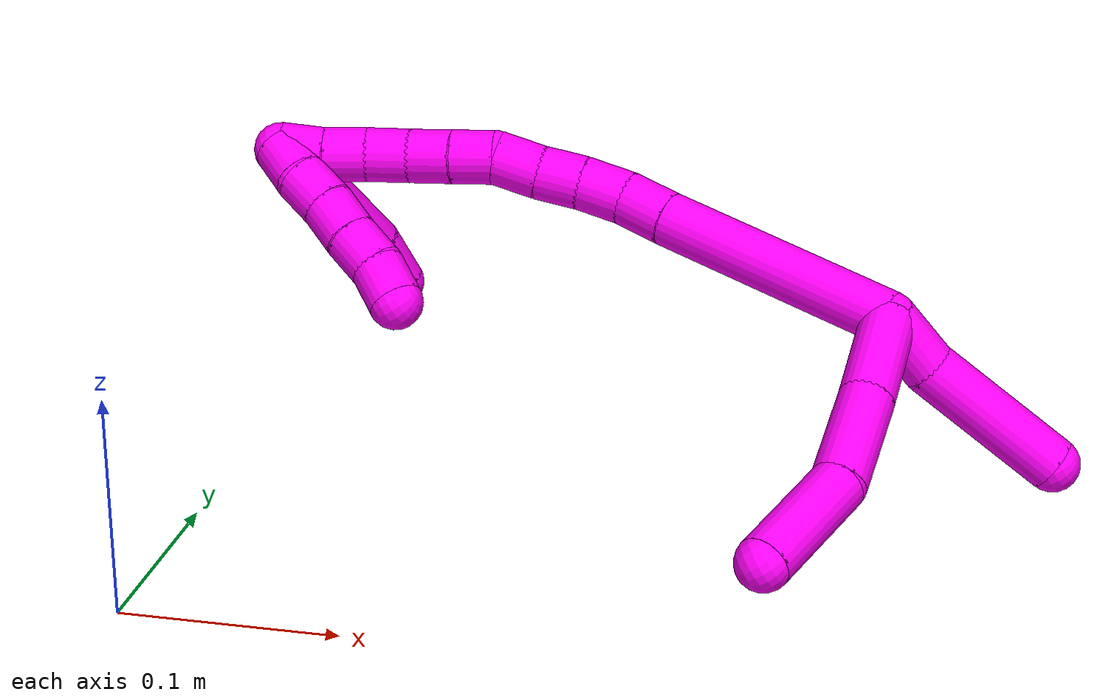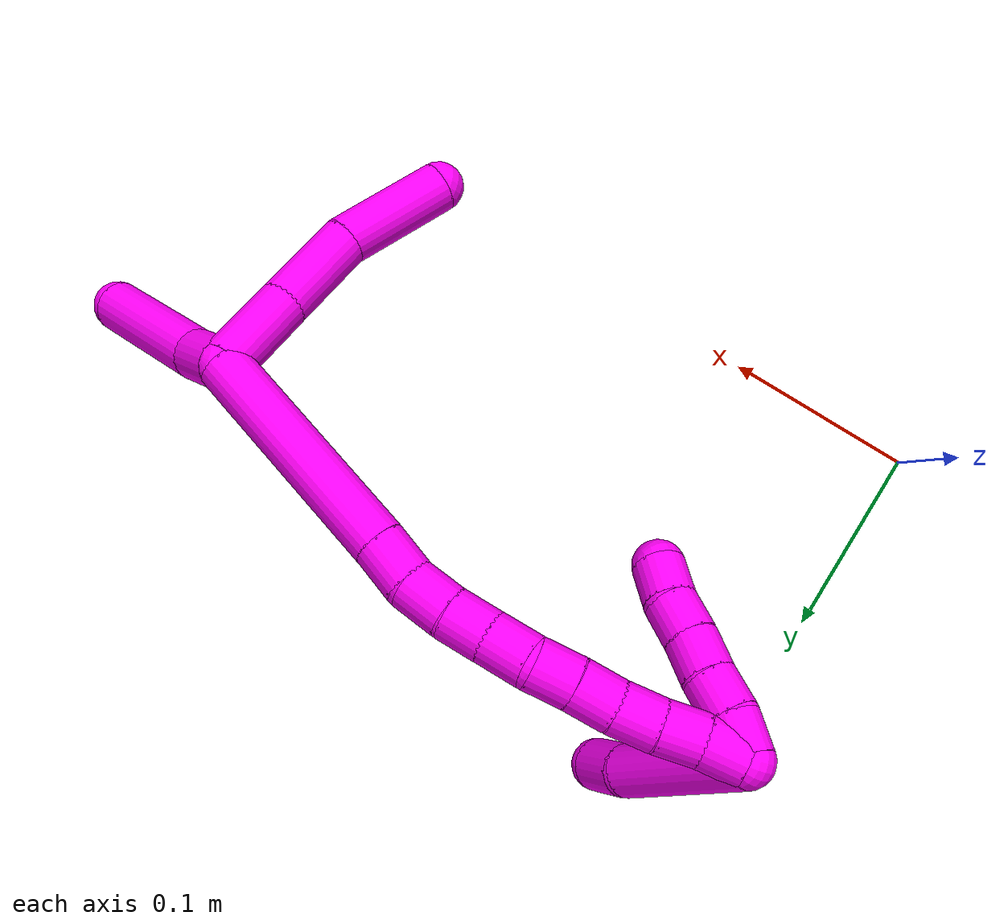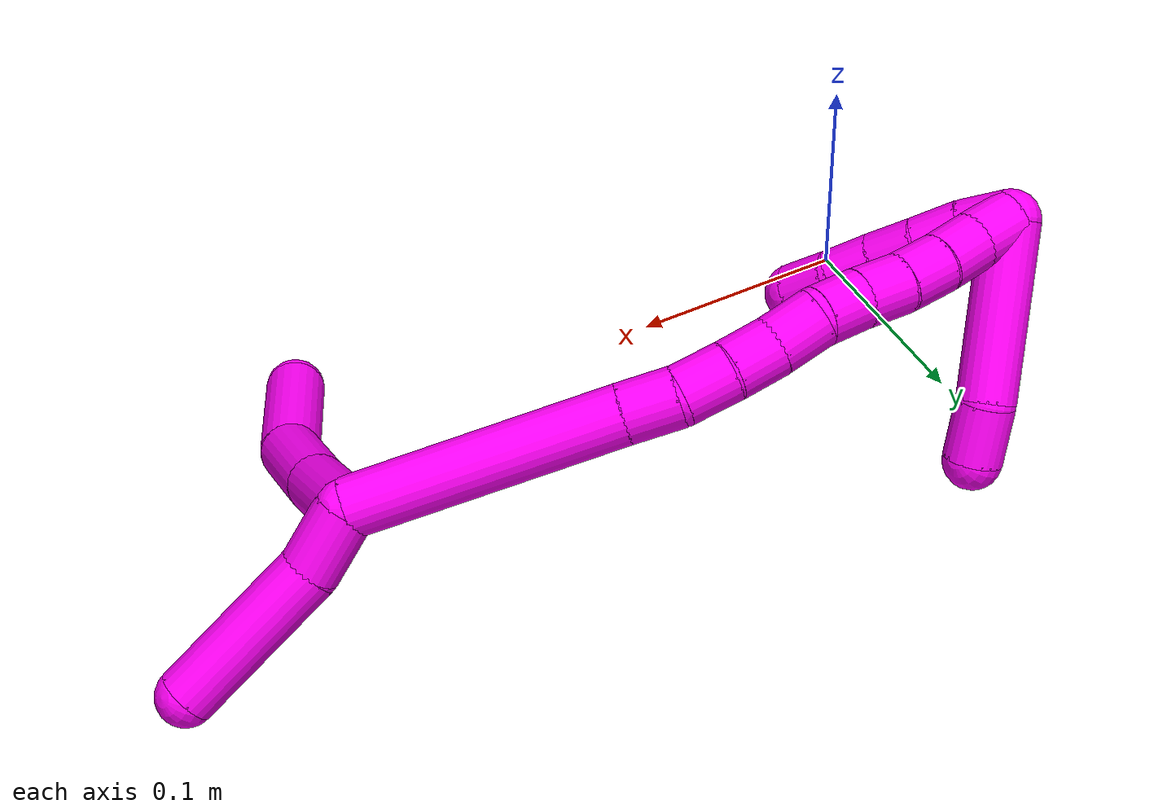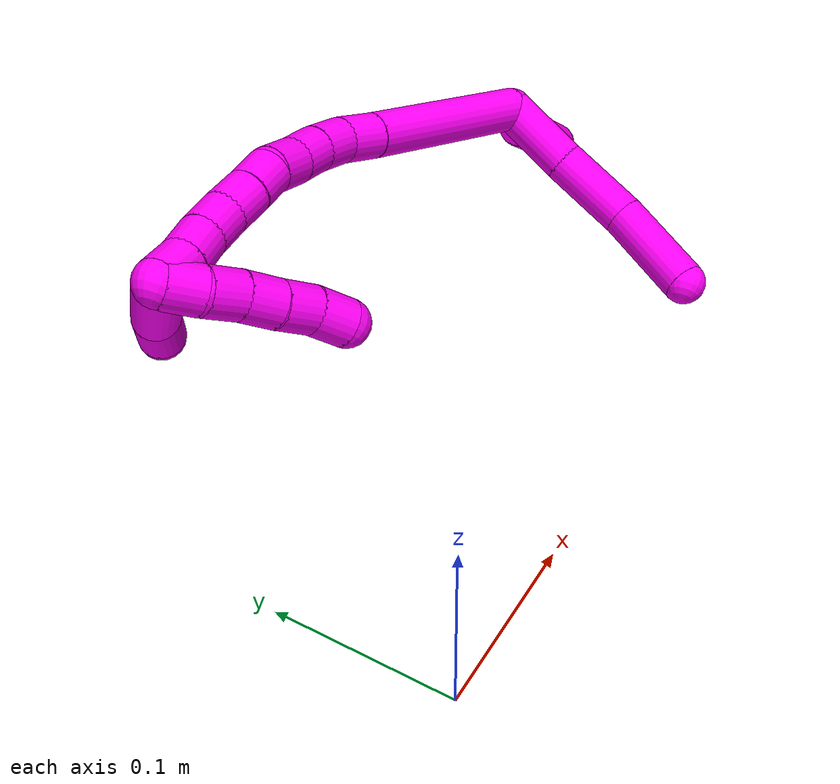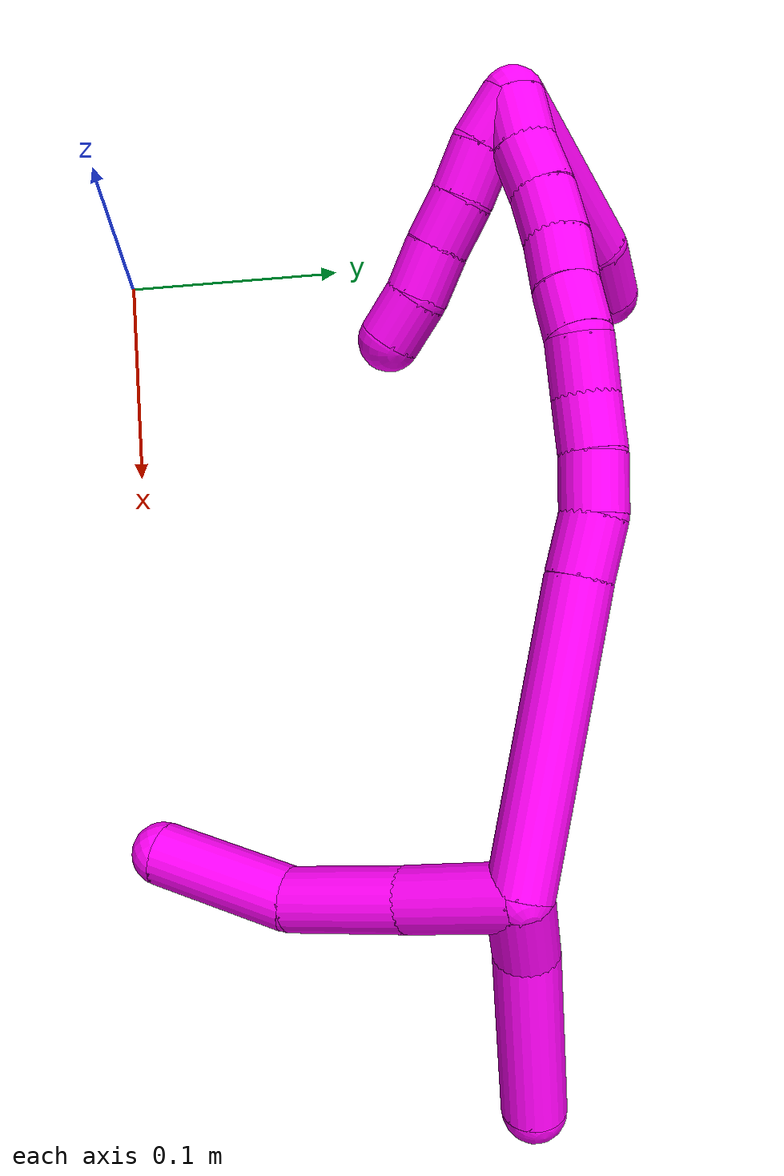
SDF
<sdf version="1.7">
 <world name="default">
  <model name="10">
   <static>0</static>
   <link name="10">
    <collision name="collision-cylinder-e_1_2_8">
     <pose>0.012932 -0.014826 -0.010836 2.20197 0.613537 1.1156</pose>
     <geometry><cylinder><radius>0.0125</radius><length>0.04492</length></cylinder></geometry>
     <surface>
      <friction><ode><mu>1.16</mu><mu2>1.16</mu2><slip1>0</slip1><slip2>0</slip2></ode></friction>
      <contact><ode><kp>1e+06</kp><kd>1</kd><max_vel>0</max_vel><min_depth>0.001</min_depth></ode></contact>
     </surface>
    </collision>
    <visual name="visual-cylinder-e_1_2_8">
     <pose>0.012932 -0.014826 -0.010836 2.20197 0.613537 1.1156</pose>
     <geometry><cylinder><radius>0.0125</radius><length>0.04492</length></cylinder></geometry>
     <material><ambient>1 0 0.964706 1</ambient></material>
    </visual>
    <collision name="collision-cylinder-e_2_8_9">
     <pose>0.038464 -0.046804 -0.033111 2.15896 0.54859 0.96827</pose>
     <geometry><cylinder><radius>0.0125</radius><length>0.048324</length></cylinder></geometry>
     <surface>
      <friction><ode><mu>1.16</mu><mu2>1.16</mu2><slip1>0</slip1><slip2>0</slip2></ode></friction>
      <contact><ode><kp>1e+06</kp><kd>1</kd><max_vel>0</max_vel><min_depth>0.001</min_depth></ode></contact>
     </surface>
    </collision>
    <visual name="visual-cylinder-e_2_8_9">
     <pose>0.038464 -0.046804 -0.033111 2.15896 0.54859 0.96827</pose>
     <geometry><cylinder><radius>0.0125</radius><length>0.048324</length></cylinder></geometry>
     <material><ambient>1 0 0.964706 1</ambient></material>
    </visual>
    <collision name="collision-cylinder-e_3_9_6">
     <pose>0.05711 -0.085255 -0.0623 2.26555 0.214715 0.452333</pose>
     <geometry><cylinder><radius>0.0125</radius><length>0.056755</length></cylinder></geometry>
     <surface>
      <friction><ode><mu>1.16</mu><mu2>1.16</mu2><slip1>0</slip1><slip2>0</slip2></ode></friction>
      <contact><ode><kp>1e+06</kp><kd>1</kd><max_vel>0</max_vel><min_depth>0.001</min_depth></ode></contact>
     </surface>
    </collision>
    <visual name="visual-cylinder-e_3_9_6">
     <pose>0.05711 -0.085255 -0.0623 2.26555 0.214715 0.452333</pose>
     <geometry><cylinder><radius>0.0125</radius><length>0.056755</length></cylinder></geometry>
     <material><ambient>1 0 0.964706 1</ambient></material>
    </visual>
    <collision name="collision-cylinder-e_1_2_10">
     <pose>0.013603 0.004946 0.001837 -1.21524 1.2008 -0.888762</pose>
     <geometry><cylinder><radius>0.0125</radius><length>0.02918</length></cylinder></geometry>
     <surface>
      <friction><ode><mu>1.16</mu><mu2>1.16</mu2><slip1>0</slip1><slip2>0</slip2></ode></friction>
      <contact><ode><kp>1e+06</kp><kd>1</kd><max_vel>0</max_vel><min_depth>0.001</min_depth></ode></contact>
     </surface>
    </collision>
    <visual name="visual-cylinder-e_1_2_10">
     <pose>0.013603 0.004946 0.001837 -1.21524 1.2008 -0.888762</pose>
     <geometry><cylinder><radius>0.0125</radius><length>0.02918</length></cylinder></geometry>
     <material><ambient>1 0 0.964706 1</ambient></material>
    </visual>
    <collision name="collision-cylinder-e_2_10_5">
     <pose>0.059506 0.017234 0.016188 -0.530601 1.1486 -0.348059</pose>
     <geometry><cylinder><radius>0.0125</radius><length>0.07082</length></cylinder></geometry>
     <surface>
      <friction><ode><mu>1.16</mu><mu2>1.16</mu2><slip1>0</slip1><slip2>0</slip2></ode></friction>
      <contact><ode><kp>1e+06</kp><kd>1</kd><max_vel>0</max_vel><min_depth>0.001</min_depth></ode></contact>
     </surface>
    </collision>
    <visual name="visual-cylinder-e_2_10_5">
     <pose>0.059506 0.017234 0.016188 -0.530601 1.1486 -0.348059</pose>
     <geometry><cylinder><radius>0.0125</radius><length>0.07082</length></cylinder></geometry>
     <material><ambient>1 0 0.964706 1</ambient></material>
    </visual>
    <collision name="collision-cylinder-e_1_2_11">
     <pose>-0.044199 0.009767 -0.033982 -2.86173 -0.896069 2.57144</pose>
     <geometry><cylinder><radius>0.0125</radius><length>0.113203</length></cylinder></geometry>
     <surface>
      <friction><ode><mu>1.16</mu><mu2>1.16</mu2><slip1>0</slip1><slip2>0</slip2></ode></friction>
      <contact><ode><kp>1e+06</kp><kd>1</kd><max_vel>0</max_vel><min_depth>0.001</min_depth></ode></contact>
     </surface>
    </collision>
    <visual name="visual-cylinder-e_1_2_11">
     <pose>-0.044199 0.009767 -0.033982 -2.86173 -0.896069 2.57144</pose>
     <geometry><cylinder><radius>0.0125</radius><length>0.113203</length></cylinder></geometry>
     <material><ambient>1 0 0.964706 1</ambient></material>
    </visual>
    <collision name="collision-cylinder-e_2_11_12">
     <pose>-0.097445 0.021886 -0.074471 -2.79472 -0.91795 2.4602</pose>
     <geometry><cylinder><radius>0.0125</radius><length>0.022779</length></cylinder></geometry>
     <surface>
      <friction><ode><mu>1.16</mu><mu2>1.16</mu2><slip1>0</slip1><slip2>0</slip2></ode></friction>
      <contact><ode><kp>1e+06</kp><kd>1</kd><max_vel>0</max_vel><min_depth>0.001</min_depth></ode></contact>
     </surface>
    </collision>
    <visual name="visual-cylinder-e_2_11_12">
     <pose>-0.097445 0.021886 -0.074471 -2.79472 -0.91795 2.4602</pose>
     <geometry><cylinder><radius>0.0125</radius><length>0.022779</length></cylinder></geometry>
     <material><ambient>1 0 0.964706 1</ambient></material>
    </visual>
    <collision name="collision-cylinder-e_3_12_13">
     <pose>-0.114653 0.024146 -0.088237 3.12899 -0.843762 -3.11352</pose>
     <geometry><cylinder><radius>0.0125</radius><length>0.021847</length></cylinder></geometry>
     <surface>
      <friction><ode><mu>1.16</mu><mu2>1.16</mu2><slip1>0</slip1><slip2>0</slip2></ode></friction>
      <contact><ode><kp>1e+06</kp><kd>1</kd><max_vel>0</max_vel><min_depth>0.001</min_depth></ode></contact>
     </surface>
    </collision>
    <visual name="visual-cylinder-e_3_12_13">
     <pose>-0.114653 0.024146 -0.088237 3.12899 -0.843762 -3.11352</pose>
     <geometry><cylinder><radius>0.0125</radius><length>0.021847</length></cylinder></geometry>
     <material><ambient>1 0 0.964706 1</ambient></material>
    </visual>
    <collision name="collision-cylinder-e_4_13_14">
     <pose>-0.129811 0.023183 -0.102866 3.02386 -0.755938 -2.84689</pose>
     <geometry><cylinder><radius>0.0125</radius><length>0.020397</length></cylinder></geometry>
     <surface>
      <friction><ode><mu>1.16</mu><mu2>1.16</mu2><slip1>0</slip1><slip2>0</slip2></ode></friction>
      <contact><ode><kp>1e+06</kp><kd>1</kd><max_vel>0</max_vel><min_depth>0.001</min_depth></ode></contact>
     </surface>
    </collision>
    <visual name="visual-cylinder-e_4_13_14">
     <pose>-0.129811 0.023183 -0.102866 3.02386 -0.755938 -2.84689</pose>
     <geometry><cylinder><radius>0.0125</radius><length>0.020397</length></cylinder></geometry>
     <material><ambient>1 0 0.964706 1</ambient></material>
    </visual>
    <collision name="collision-cylinder-e_5_14_15">
     <pose>-0.144815 0.020924 -0.11726 2.94664 -0.841288 -2.71118</pose>
     <geometry><cylinder><radius>0.0125</radius><length>0.021484</length></cylinder></geometry>
     <surface>
      <friction><ode><mu>1.16</mu><mu2>1.16</mu2><slip1>0</slip1><slip2>0</slip2></ode></friction>
      <contact><ode><kp>1e+06</kp><kd>1</kd><max_vel>0</max_vel><min_depth>0.001</min_depth></ode></contact>
     </surface>
    </collision>
    <visual name="visual-cylinder-e_5_14_15">
     <pose>-0.144815 0.020924 -0.11726 2.94664 -0.841288 -2.71118</pose>
     <geometry><cylinder><radius>0.0125</radius><length>0.021484</length></cylinder></geometry>
     <material><ambient>1 0 0.964706 1</ambient></material>
    </visual>
    <collision name="collision-cylinder-e_6_15_16">
     <pose>-0.157883 0.018668 -0.132883 3.04085 -0.529632 -2.77397</pose>
     <geometry><cylinder><radius>0.0125</radius><length>0.02003</length></cylinder></geometry>
     <surface>
      <friction><ode><mu>1.16</mu><mu2>1.16</mu2><slip1>0</slip1><slip2>0</slip2></ode></friction>
      <contact><ode><kp>1e+06</kp><kd>1</kd><max_vel>0</max_vel><min_depth>0.001</min_depth></ode></contact>
     </surface>
    </collision>
    <visual name="visual-cylinder-e_6_15_16">
     <pose>-0.157883 0.018668 -0.132883 3.04085 -0.529632 -2.77397</pose>
     <geometry><cylinder><radius>0.0125</radius><length>0.02003</length></cylinder></geometry>
     <material><ambient>1 0 0.964706 1</ambient></material>
    </visual>
    <collision name="collision-cylinder-e_7_16_17">
     <pose>-0.168101 0.017543 -0.150058 3.11173 -0.541339 -3.03408</pose>
     <geometry><cylinder><radius>0.0125</radius><length>0.020023</length></cylinder></geometry>
     <surface>
      <friction><ode><mu>1.16</mu><mu2>1.16</mu2><slip1>0</slip1><slip2>0</slip2></ode></friction>
      <contact><ode><kp>1e+06</kp><kd>1</kd><max_vel>0</max_vel><min_depth>0.001</min_depth></ode></contact>
     </surface>
    </collision>
    <visual name="visual-cylinder-e_7_16_17">
     <pose>-0.168101 0.017543 -0.150058 3.11173 -0.541339 -3.03408</pose>
     <geometry><cylinder><radius>0.0125</radius><length>0.020023</length></cylinder></geometry>
     <material><ambient>1 0 0.964706 1</ambient></material>
    </visual>
    <collision name="collision-cylinder-e_8_17_18">
     <pose>-0.178516 0.01591 -0.167166 2.98161 -0.546459 -2.58437</pose>
     <geometry><cylinder><radius>0.0125</radius><length>0.020229</length></cylinder></geometry>
     <surface>
      <friction><ode><mu>1.16</mu><mu2>1.16</mu2><slip1>0</slip1><slip2>0</slip2></ode></friction>
      <contact><ode><kp>1e+06</kp><kd>1</kd><max_vel>0</max_vel><min_depth>0.001</min_depth></ode></contact>
     </surface>
    </collision>
    <visual name="visual-cylinder-e_8_17_18">
     <pose>-0.178516 0.01591 -0.167166 2.98161 -0.546459 -2.58437</pose>
     <geometry><cylinder><radius>0.0125</radius><length>0.020229</length></cylinder></geometry>
     <material><ambient>1 0 0.964706 1</ambient></material>
    </visual>
    <collision name="collision-cylinder-e_9_18_19">
     <pose>-0.188623 0.012314 -0.18416 2.8851 -0.506177 -2.21656</pose>
     <geometry><cylinder><radius>0.0125</radius><length>0.020007</length></cylinder></geometry>
     <surface>
      <friction><ode><mu>1.16</mu><mu2>1.16</mu2><slip1>0</slip1><slip2>0</slip2></ode></friction>
      <contact><ode><kp>1e+06</kp><kd>1</kd><max_vel>0</max_vel><min_depth>0.001</min_depth></ode></contact>
     </surface>
    </collision>
    <visual name="visual-cylinder-e_9_18_19">
     <pose>-0.188623 0.012314 -0.18416 2.8851 -0.506177 -2.21656</pose>
     <geometry><cylinder><radius>0.0125</radius><length>0.020007</length></cylinder></geometry>
     <material><ambient>1 0 0.964706 1</ambient></material>
    </visual>
    <collision name="collision-cylinder-e_10_19_1">
     <pose>-0.199385 0.008509 -0.200531 2.94378 -0.632527 -2.55277</pose>
     <geometry><cylinder><radius>0.0125</radius><length>0.020001</length></cylinder></geometry>
     <surface>
      <friction><ode><mu>1.16</mu><mu2>1.16</mu2><slip1>0</slip1><slip2>0</slip2></ode></friction>
      <contact><ode><kp>1e+06</kp><kd>1</kd><max_vel>0</max_vel><min_depth>0.001</min_depth></ode></contact>
     </surface>
    </collision>
    <visual name="visual-cylinder-e_10_19_1">
     <pose>-0.199385 0.008509 -0.200531 2.94378 -0.632527 -2.55277</pose>
     <geometry><cylinder><radius>0.0125</radius><length>0.020001</length></cylinder></geometry>
     <material><ambient>1 0 0.964706 1</ambient></material>
    </visual>
    <collision name="collision-cylinder-e_1_1_20">
     <pose>-0.179063 0.033666 -0.207307 -1.52846 0.775371 -0.746176</pose>
     <geometry><cylinder><radius>0.0125</radius><length>0.074957</length></cylinder></geometry>
     <surface>
      <friction><ode><mu>1.16</mu><mu2>1.16</mu2><slip1>0</slip1><slip2>0</slip2></ode></friction>
      <contact><ode><kp>1e+06</kp><kd>1</kd><max_vel>0</max_vel><min_depth>0.001</min_depth></ode></contact>
     </surface>
    </collision>
    <visual name="visual-cylinder-e_1_1_20">
     <pose>-0.179063 0.033666 -0.207307 -1.52846 0.775371 -0.746176</pose>
     <geometry><cylinder><radius>0.0125</radius><length>0.074957</length></cylinder></geometry>
     <material><ambient>1 0 0.964706 1</ambient></material>
    </visual>
    <collision name="collision-cylinder-e_2_20_4">
     <pose>-0.142509 0.067361 -0.207566 -1.76837 0.968714 -1.14136</pose>
     <geometry><cylinder><radius>0.0125</radius><length>0.025043</length></cylinder></geometry>
     <surface>
      <friction><ode><mu>1.16</mu><mu2>1.16</mu2><slip1>0</slip1><slip2>0</slip2></ode></friction>
      <contact><ode><kp>1e+06</kp><kd>1</kd><max_vel>0</max_vel><min_depth>0.001</min_depth></ode></contact>
     </surface>
    </collision>
    <visual name="visual-cylinder-e_2_20_4">
     <pose>-0.142509 0.067361 -0.207566 -1.76837 0.968714 -1.14136</pose>
     <geometry><cylinder><radius>0.0125</radius><length>0.025043</length></cylinder></geometry>
     <material><ambient>1 0 0.964706 1</ambient></material>
    </visual>
    <collision name="collision-cylinder-e_1_1_21">
     <pose>-0.196543 0.002631 -0.206217 1.09311 1.06618 0.689316</pose>
     <geometry><cylinder><radius>0.0125</radius><length>0.02</length></cylinder></geometry>
     <surface>
      <friction><ode><mu>1.16</mu><mu2>1.16</mu2><slip1>0</slip1><slip2>0</slip2></ode></friction>
      <contact><ode><kp>1e+06</kp><kd>1</kd><max_vel>0</max_vel><min_depth>0.001</min_depth></ode></contact>
     </surface>
    </collision>
    <visual name="visual-cylinder-e_1_1_21">
     <pose>-0.196543 0.002631 -0.206217 1.09311 1.06618 0.689316</pose>
     <geometry><cylinder><radius>0.0125</radius><length>0.02</length></cylinder></geometry>
     <material><ambient>1 0 0.964706 1</ambient></material>
    </visual>
    <collision name="collision-cylinder-e_2_21_22">
     <pose>-0.178652 -0.004302 -0.200905 0.707063 1.15237 0.470659</pose>
     <geometry><cylinder><radius>0.0125</radius><length>0.02</length></cylinder></geometry>
     <surface>
      <friction><ode><mu>1.16</mu><mu2>1.16</mu2><slip1>0</slip1><slip2>0</slip2></ode></friction>
      <contact><ode><kp>1e+06</kp><kd>1</kd><max_vel>0</max_vel><min_depth>0.001</min_depth></ode></contact>
     </surface>
    </collision>
    <visual name="visual-cylinder-e_2_21_22">
     <pose>-0.178652 -0.004302 -0.200905 0.707063 1.15237 0.470659</pose>
     <geometry><cylinder><radius>0.0125</radius><length>0.02</length></cylinder></geometry>
     <material><ambient>1 0 0.964706 1</ambient></material>
    </visual>
    <collision name="collision-cylinder-e_3_22_23">
     <pose>-0.160257 -0.010102 -0.195745 0.990713 1.18331 0.696507</pose>
     <geometry><cylinder><radius>0.0125</radius><length>0.02</length></cylinder></geometry>
     <surface>
      <friction><ode><mu>1.16</mu><mu2>1.16</mu2><slip1>0</slip1><slip2>0</slip2></ode></friction>
      <contact><ode><kp>1e+06</kp><kd>1</kd><max_vel>0</max_vel><min_depth>0.001</min_depth></ode></contact>
     </surface>
    </collision>
    <visual name="visual-cylinder-e_3_22_23">
     <pose>-0.160257 -0.010102 -0.195745 0.990713 1.18331 0.696507</pose>
     <geometry><cylinder><radius>0.0125</radius><length>0.02</length></cylinder></geometry>
     <material><ambient>1 0 0.964706 1</ambient></material>
    </visual>
    <collision name="collision-cylinder-e_4_23_24">
     <pose>-0.141743 -0.015892 -0.190946 0.766751 1.18222 0.52873</pose>
     <geometry><cylinder><radius>0.0125</radius><length>0.02</length></cylinder></geometry>
     <surface>
      <friction><ode><mu>1.16</mu><mu2>1.16</mu2><slip1>0</slip1><slip2>0</slip2></ode></friction>
      <contact><ode><kp>1e+06</kp><kd>1</kd><max_vel>0</max_vel><min_depth>0.001</min_depth></ode></contact>
     </surface>
    </collision>
    <visual name="visual-cylinder-e_4_23_24">
     <pose>-0.141743 -0.015892 -0.190946 0.766751 1.18222 0.52873</pose>
     <geometry><cylinder><radius>0.0125</radius><length>0.02</length></cylinder></geometry>
     <material><ambient>1 0 0.964706 1</ambient></material>
    </visual>
    <collision name="collision-cylinder-e_5_24_3">
     <pose>-0.123173 -0.02206 -0.187391 1.34157 1.19876 0.993614</pose>
     <geometry><cylinder><radius>0.0125</radius><length>0.02</length></cylinder></geometry>
     <surface>
      <friction><ode><mu>1.16</mu><mu2>1.16</mu2><slip1>0</slip1><slip2>0</slip2></ode></friction>
      <contact><ode><kp>1e+06</kp><kd>1</kd><max_vel>0</max_vel><min_depth>0.001</min_depth></ode></contact>
     </surface>
    </collision>
    <visual name="visual-cylinder-e_5_24_3">
     <pose>-0.123173 -0.02206 -0.187391 1.34157 1.19876 0.993614</pose>
     <geometry><cylinder><radius>0.0125</radius><length>0.02</length></cylinder></geometry>
     <material><ambient>1 0 0.964706 1</ambient></material>
    </visual>
    <collision name="collision-sphere-3">
     <pose>-0.113857 -0.0256 -0.186565 0 -0 0</pose>
     <geometry><sphere><radius>0.0125</radius></sphere></geometry>
     <surface>
      <friction><ode><mu>1.16</mu><mu2>1.16</mu2><slip1>0</slip1><slip2>0</slip2></ode></friction>
      <contact><ode><kp>1e+06</kp><kd>1</kd><max_vel>0</max_vel><min_depth>0.001</min_depth></ode></contact>
     </surface>
    </collision>
    <visual name="visual-sphere-3">
     <pose>-0.113857 -0.0256 -0.186565 0 -0 0</pose>
     <geometry><sphere><radius>0.0125</radius></sphere></geometry>
     <material><ambient>1 0 0.964706 1</ambient></material>
    </visual>
    <collision name="collision-sphere-24">
     <pose>-0.132489 -0.01852 -0.188217 0 -0 0</pose>
     <geometry><sphere><radius>0.0125</radius></sphere></geometry>
     <surface>
      <friction><ode><mu>1.16</mu><mu2>1.16</mu2><slip1>0</slip1><slip2>0</slip2></ode></friction>
      <contact><ode><kp>1e+06</kp><kd>1</kd><max_vel>0</max_vel><min_depth>0.001</min_depth></ode></contact>
     </surface>
    </collision>
    <visual name="visual-sphere-24">
     <pose>-0.132489 -0.01852 -0.188217 0 -0 0</pose>
     <geometry><sphere><radius>0.0125</radius></sphere></geometry>
     <material><ambient>1 0 0.964706 1</ambient></material>
    </visual>
    <collision name="collision-sphere-23">
     <pose>-0.150998 -0.013263 -0.193674 0 -0 0</pose>
     <geometry><sphere><radius>0.0125</radius></sphere></geometry>
     <surface>
      <friction><ode><mu>1.16</mu><mu2>1.16</mu2><slip1>0</slip1><slip2>0</slip2></ode></friction>
      <contact><ode><kp>1e+06</kp><kd>1</kd><max_vel>0</max_vel><min_depth>0.001</min_depth></ode></contact>
     </surface>
    </collision>
    <visual name="visual-sphere-23">
     <pose>-0.150998 -0.013263 -0.193674 0 -0 0</pose>
     <geometry><sphere><radius>0.0125</radius></sphere></geometry>
     <material><ambient>1 0 0.964706 1</ambient></material>
    </visual>
    <collision name="collision-sphere-22">
     <pose>-0.169515 -0.006942 -0.197816 0 -0 0</pose>
     <geometry><sphere><radius>0.0125</radius></sphere></geometry>
     <surface>
      <friction><ode><mu>1.16</mu><mu2>1.16</mu2><slip1>0</slip1><slip2>0</slip2></ode></friction>
      <contact><ode><kp>1e+06</kp><kd>1</kd><max_vel>0</max_vel><min_depth>0.001</min_depth></ode></contact>
     </surface>
    </collision>
    <visual name="visual-sphere-22">
     <pose>-0.169515 -0.006942 -0.197816 0 -0 0</pose>
     <geometry><sphere><radius>0.0125</radius></sphere></geometry>
     <material><ambient>1 0 0.964706 1</ambient></material>
    </visual>
    <collision name="collision-sphere-21">
     <pose>-0.18779 -0.001663 -0.203995 0 -0 0</pose>
     <geometry><sphere><radius>0.0125</radius></sphere></geometry>
     <surface>
      <friction><ode><mu>1.16</mu><mu2>1.16</mu2><slip1>0</slip1><slip2>0</slip2></ode></friction>
      <contact><ode><kp>1e+06</kp><kd>1</kd><max_vel>0</max_vel><min_depth>0.001</min_depth></ode></contact>
     </surface>
    </collision>
    <visual name="visual-sphere-21">
     <pose>-0.18779 -0.001663 -0.203995 0 -0 0</pose>
     <geometry><sphere><radius>0.0125</radius></sphere></geometry>
     <material><ambient>1 0 0.964706 1</ambient></material>
    </visual>
    <collision name="collision-sphere-4">
     <pose>-0.132189 0.074315 -0.208958 0 -0 0</pose>
     <geometry><sphere><radius>0.0125</radius></sphere></geometry>
     <surface>
      <friction><ode><mu>1.16</mu><mu2>1.16</mu2><slip1>0</slip1><slip2>0</slip2></ode></friction>
      <contact><ode><kp>1e+06</kp><kd>1</kd><max_vel>0</max_vel><min_depth>0.001</min_depth></ode></contact>
     </surface>
    </collision>
    <visual name="visual-sphere-4">
     <pose>-0.132189 0.074315 -0.208958 0 -0 0</pose>
     <geometry><sphere><radius>0.0125</radius></sphere></geometry>
     <material><ambient>1 0 0.964706 1</ambient></material>
    </visual>
    <collision name="collision-sphere-20">
     <pose>-0.152829 0.060407 -0.206174 0 -0 0</pose>
     <geometry><sphere><radius>0.0125</radius></sphere></geometry>
     <surface>
      <friction><ode><mu>1.16</mu><mu2>1.16</mu2><slip1>0</slip1><slip2>0</slip2></ode></friction>
      <contact><ode><kp>1e+06</kp><kd>1</kd><max_vel>0</max_vel><min_depth>0.001</min_depth></ode></contact>
     </surface>
    </collision>
    <visual name="visual-sphere-20">
     <pose>-0.152829 0.060407 -0.206174 0 -0 0</pose>
     <geometry><sphere><radius>0.0125</radius></sphere></geometry>
     <material><ambient>1 0 0.964706 1</ambient></material>
    </visual>
    <collision name="collision-sphere-5">
     <pose>0.091807 0.024577 0.028703 0 -0 0</pose>
     <geometry><sphere><radius>0.0125</radius></sphere></geometry>
     <surface>
      <friction><ode><mu>1.16</mu><mu2>1.16</mu2><slip1>0</slip1><slip2>0</slip2></ode></friction>
      <contact><ode><kp>1e+06</kp><kd>1</kd><max_vel>0</max_vel><min_depth>0.001</min_depth></ode></contact>
     </surface>
    </collision>
    <visual name="visual-sphere-5">
     <pose>0.091807 0.024577 0.028703 0 -0 0</pose>
     <geometry><sphere><radius>0.0125</radius></sphere></geometry>
     <material><ambient>1 0 0.964706 1</ambient></material>
    </visual>
    <collision name="collision-sphere-10">
     <pose>0.027205 0.009892 0.003673 0 -0 0</pose>
     <geometry><sphere><radius>0.0125</radius></sphere></geometry>
     <surface>
      <friction><ode><mu>1.16</mu><mu2>1.16</mu2><slip1>0</slip1><slip2>0</slip2></ode></friction>
      <contact><ode><kp>1e+06</kp><kd>1</kd><max_vel>0</max_vel><min_depth>0.001</min_depth></ode></contact>
     </surface>
    </collision>
    <visual name="visual-sphere-10">
     <pose>0.027205 0.009892 0.003673 0 -0 0</pose>
     <geometry><sphere><radius>0.0125</radius></sphere></geometry>
     <material><ambient>1 0 0.964706 1</ambient></material>
    </visual>
    <collision name="collision-sphere-6">
     <pose>0.063157 -0.106555 -0.080051 0 -0 0</pose>
     <geometry><sphere><radius>0.0125</radius></sphere></geometry>
     <surface>
      <friction><ode><mu>1.16</mu><mu2>1.16</mu2><slip1>0</slip1><slip2>0</slip2></ode></friction>
      <contact><ode><kp>1e+06</kp><kd>1</kd><max_vel>0</max_vel><min_depth>0.001</min_depth></ode></contact>
     </surface>
    </collision>
    <visual name="visual-sphere-6">
     <pose>0.063157 -0.106555 -0.080051 0 -0 0</pose>
     <geometry><sphere><radius>0.0125</radius></sphere></geometry>
     <material><ambient>1 0 0.964706 1</ambient></material>
    </visual>
    <collision name="collision-sphere-9">
     <pose>0.051064 -0.063956 -0.04455 0 -0 0</pose>
     <geometry><sphere><radius>0.0125</radius></sphere></geometry>
     <surface>
      <friction><ode><mu>1.16</mu><mu2>1.16</mu2><slip1>0</slip1><slip2>0</slip2></ode></friction>
      <contact><ode><kp>1e+06</kp><kd>1</kd><max_vel>0</max_vel><min_depth>0.001</min_depth></ode></contact>
     </surface>
    </collision>
    <visual name="visual-sphere-9">
     <pose>0.051064 -0.063956 -0.04455 0 -0 0</pose>
     <geometry><sphere><radius>0.0125</radius></sphere></geometry>
     <material><ambient>1 0 0.964706 1</ambient></material>
    </visual>
    <collision name="collision-sphere-2">
     <geometry><sphere><radius>0.0125</radius></sphere></geometry>
     <surface>
      <friction><ode><mu>1.16</mu><mu2>1.16</mu2><slip1>0</slip1><slip2>0</slip2></ode></friction>
      <contact><ode><kp>1e+06</kp><kd>1</kd><max_vel>0</max_vel><min_depth>0.001</min_depth></ode></contact>
     </surface>
    </collision>
    <visual name="visual-sphere-2">
     <geometry><sphere><radius>0.0125</radius></sphere></geometry>
     <material><ambient>1 0 0.964706 1</ambient></material>
    </visual>
    <collision name="collision-sphere-19">
     <pose>-0.193473 0.010094 -0.192623 0 -0 0</pose>
     <geometry><sphere><radius>0.0125</radius></sphere></geometry>
     <surface>
      <friction><ode><mu>1.16</mu><mu2>1.16</mu2><slip1>0</slip1><slip2>0</slip2></ode></friction>
      <contact><ode><kp>1e+06</kp><kd>1</kd><max_vel>0</max_vel><min_depth>0.001</min_depth></ode></contact>
     </surface>
    </collision>
    <visual name="visual-sphere-19">
     <pose>-0.193473 0.010094 -0.192623 0 -0 0</pose>
     <geometry><sphere><radius>0.0125</radius></sphere></geometry>
     <material><ambient>1 0 0.964706 1</ambient></material>
    </visual>
    <collision name="collision-sphere-8">
     <pose>0.025863 -0.029651 -0.021673 0 -0 0</pose>
     <geometry><sphere><radius>0.0125</radius></sphere></geometry>
     <surface>
      <friction><ode><mu>1.16</mu><mu2>1.16</mu2><slip1>0</slip1><slip2>0</slip2></ode></friction>
      <contact><ode><kp>1e+06</kp><kd>1</kd><max_vel>0</max_vel><min_depth>0.001</min_depth></ode></contact>
     </surface>
    </collision>
    <visual name="visual-sphere-8">
     <pose>0.025863 -0.029651 -0.021673 0 -0 0</pose>
     <geometry><sphere><radius>0.0125</radius></sphere></geometry>
     <material><ambient>1 0 0.964706 1</ambient></material>
    </visual>
    <collision name="collision-sphere-11">
     <pose>-0.088397 0.019534 -0.067965 0 -0 0</pose>
     <geometry><sphere><radius>0.0125</radius></sphere></geometry>
     <surface>
      <friction><ode><mu>1.16</mu><mu2>1.16</mu2><slip1>0</slip1><slip2>0</slip2></ode></friction>
      <contact><ode><kp>1e+06</kp><kd>1</kd><max_vel>0</max_vel><min_depth>0.001</min_depth></ode></contact>
     </surface>
    </collision>
    <visual name="visual-sphere-11">
     <pose>-0.088397 0.019534 -0.067965 0 -0 0</pose>
     <geometry><sphere><radius>0.0125</radius></sphere></geometry>
     <material><ambient>1 0 0.964706 1</ambient></material>
    </visual>
    <collision name="collision-sphere-12">
     <pose>-0.106492 0.024238 -0.080977 0 -0 0</pose>
     <geometry><sphere><radius>0.0125</radius></sphere></geometry>
     <surface>
      <friction><ode><mu>1.16</mu><mu2>1.16</mu2><slip1>0</slip1><slip2>0</slip2></ode></friction>
      <contact><ode><kp>1e+06</kp><kd>1</kd><max_vel>0</max_vel><min_depth>0.001</min_depth></ode></contact>
     </surface>
    </collision>
    <visual name="visual-sphere-12">
     <pose>-0.106492 0.024238 -0.080977 0 -0 0</pose>
     <geometry><sphere><radius>0.0125</radius></sphere></geometry>
     <material><ambient>1 0 0.964706 1</ambient></material>
    </visual>
    <collision name="collision-sphere-13">
     <pose>-0.122815 0.024055 -0.095497 0 -0 0</pose>
     <geometry><sphere><radius>0.0125</radius></sphere></geometry>
     <surface>
      <friction><ode><mu>1.16</mu><mu2>1.16</mu2><slip1>0</slip1><slip2>0</slip2></ode></friction>
      <contact><ode><kp>1e+06</kp><kd>1</kd><max_vel>0</max_vel><min_depth>0.001</min_depth></ode></contact>
     </surface>
    </collision>
    <visual name="visual-sphere-13">
     <pose>-0.122815 0.024055 -0.095497 0 -0 0</pose>
     <geometry><sphere><radius>0.0125</radius></sphere></geometry>
     <material><ambient>1 0 0.964706 1</ambient></material>
    </visual>
    <collision name="collision-sphere-14">
     <pose>-0.136807 0.022311 -0.110236 0 -0 0</pose>
     <geometry><sphere><radius>0.0125</radius></sphere></geometry>
     <surface>
      <friction><ode><mu>1.16</mu><mu2>1.16</mu2><slip1>0</slip1><slip2>0</slip2></ode></friction>
      <contact><ode><kp>1e+06</kp><kd>1</kd><max_vel>0</max_vel><min_depth>0.001</min_depth></ode></contact>
     </surface>
    </collision>
    <visual name="visual-sphere-14">
     <pose>-0.136807 0.022311 -0.110236 0 -0 0</pose>
     <geometry><sphere><radius>0.0125</radius></sphere></geometry>
     <material><ambient>1 0 0.964706 1</ambient></material>
    </visual>
    <collision name="collision-sphere-15">
     <pose>-0.152823 0.019537 -0.124284 0 -0 0</pose>
     <geometry><sphere><radius>0.0125</radius></sphere></geometry>
     <surface>
      <friction><ode><mu>1.16</mu><mu2>1.16</mu2><slip1>0</slip1><slip2>0</slip2></ode></friction>
      <contact><ode><kp>1e+06</kp><kd>1</kd><max_vel>0</max_vel><min_depth>0.001</min_depth></ode></contact>
     </surface>
    </collision>
    <visual name="visual-sphere-15">
     <pose>-0.152823 0.019537 -0.124284 0 -0 0</pose>
     <geometry><sphere><radius>0.0125</radius></sphere></geometry>
     <material><ambient>1 0 0.964706 1</ambient></material>
    </visual>
    <collision name="collision-sphere-16">
     <pose>-0.162942 0.017799 -0.141482 0 -0 0</pose>
     <geometry><sphere><radius>0.0125</radius></sphere></geometry>
     <surface>
      <friction><ode><mu>1.16</mu><mu2>1.16</mu2><slip1>0</slip1><slip2>0</slip2></ode></friction>
      <contact><ode><kp>1e+06</kp><kd>1</kd><max_vel>0</max_vel><min_depth>0.001</min_depth></ode></contact>
     </surface>
    </collision>
    <visual name="visual-sphere-16">
     <pose>-0.162942 0.017799 -0.141482 0 -0 0</pose>
     <geometry><sphere><radius>0.0125</radius></sphere></geometry>
     <material><ambient>1 0 0.964706 1</ambient></material>
    </visual>
    <collision name="collision-sphere-17">
     <pose>-0.17326 0.017287 -0.158635 0 -0 0</pose>
     <geometry><sphere><radius>0.0125</radius></sphere></geometry>
     <surface>
      <friction><ode><mu>1.16</mu><mu2>1.16</mu2><slip1>0</slip1><slip2>0</slip2></ode></friction>
      <contact><ode><kp>1e+06</kp><kd>1</kd><max_vel>0</max_vel><min_depth>0.001</min_depth></ode></contact>
     </surface>
    </collision>
    <visual name="visual-sphere-17">
     <pose>-0.17326 0.017287 -0.158635 0 -0 0</pose>
     <geometry><sphere><radius>0.0125</radius></sphere></geometry>
     <material><ambient>1 0 0.964706 1</ambient></material>
    </visual>
    <collision name="collision-sphere-18">
     <pose>-0.183772 0.014533 -0.175697 0 -0 0</pose>
     <geometry><sphere><radius>0.0125</radius></sphere></geometry>
     <surface>
      <friction><ode><mu>1.16</mu><mu2>1.16</mu2><slip1>0</slip1><slip2>0</slip2></ode></friction>
      <contact><ode><kp>1e+06</kp><kd>1</kd><max_vel>0</max_vel><min_depth>0.001</min_depth></ode></contact>
     </surface>
    </collision>
    <visual name="visual-sphere-18">
     <pose>-0.183772 0.014533 -0.175697 0 -0 0</pose>
     <geometry><sphere><radius>0.0125</radius></sphere></geometry>
     <material><ambient>1 0 0.964706 1</ambient></material>
    </visual>
    <collision name="collision-sphere-1">
     <pose>-0.205297 0.006924 -0.20844 0 -0 0</pose>
     <geometry><sphere><radius>0.0125</radius></sphere></geometry>
     <surface>
      <friction><ode><mu>1.16</mu><mu2>1.16</mu2><slip1>0</slip1><slip2>0</slip2></ode></friction>
      <contact><ode><kp>1e+06</kp><kd>1</kd><max_vel>0</max_vel><min_depth>0.001</min_depth></ode></contact>
     </surface>
    </collision>
    <visual name="visual-sphere-1">
     <pose>-0.205297 0.006924 -0.20844 0 -0 0</pose>
     <geometry><sphere><radius>0.0125</radius></sphere></geometry>
     <material><ambient>1 0 0.964706 1</ambient></material>
    </visual>
    <inertial>
     <pose>-0.074792 0.001776 -0.098154 0 -0 0</pose>
     <mass>0.75</mass>
     <inertia>
      <ixx>3.2e-05</ixx>
      <ixy>0</ixy>
      <ixz>0</ixz>
      <iyy>0.000219</iyy>
      <iyz>0</iyz>
      <izz>-2.2e-05</izz>
     </inertia>
    </inertial>
   </link>
   <pose>0.313313 0.139781 0.108744 -0.536669 0.905902 -0.452013</pose>
  </model>
 </world>
</sdf>
